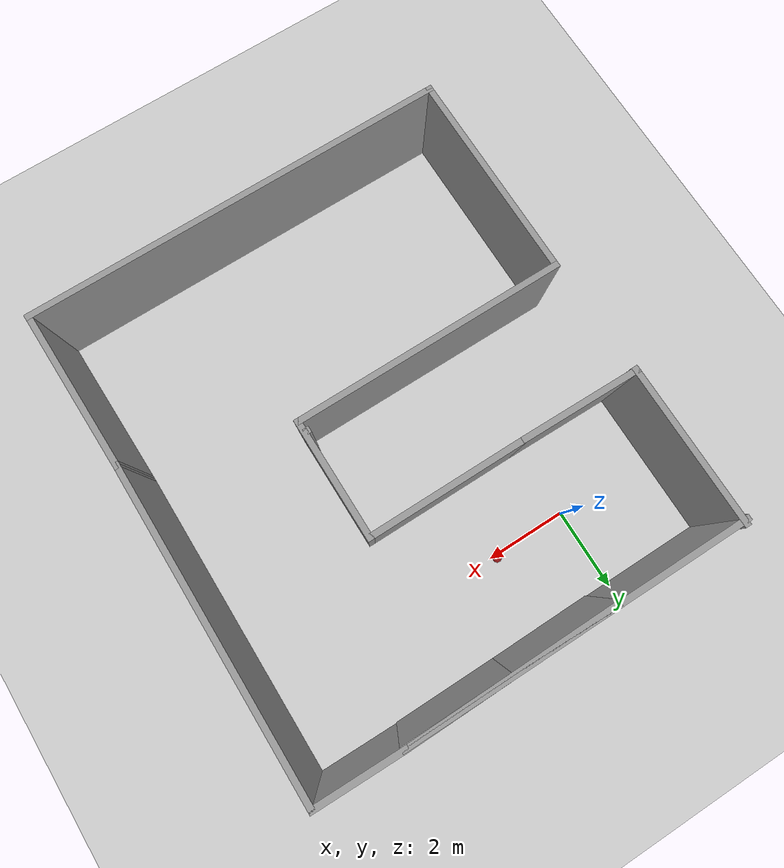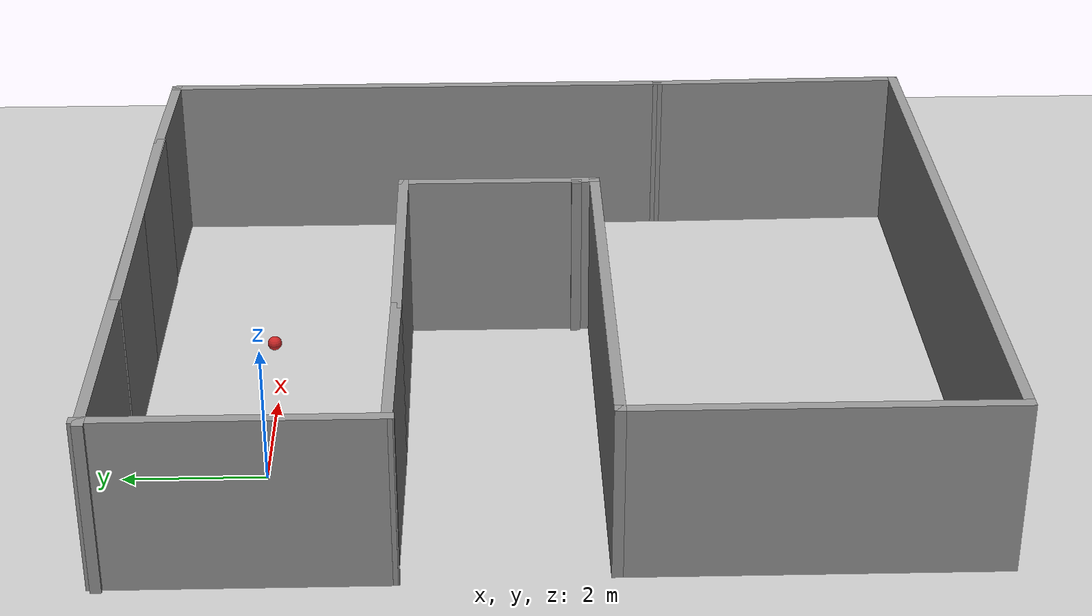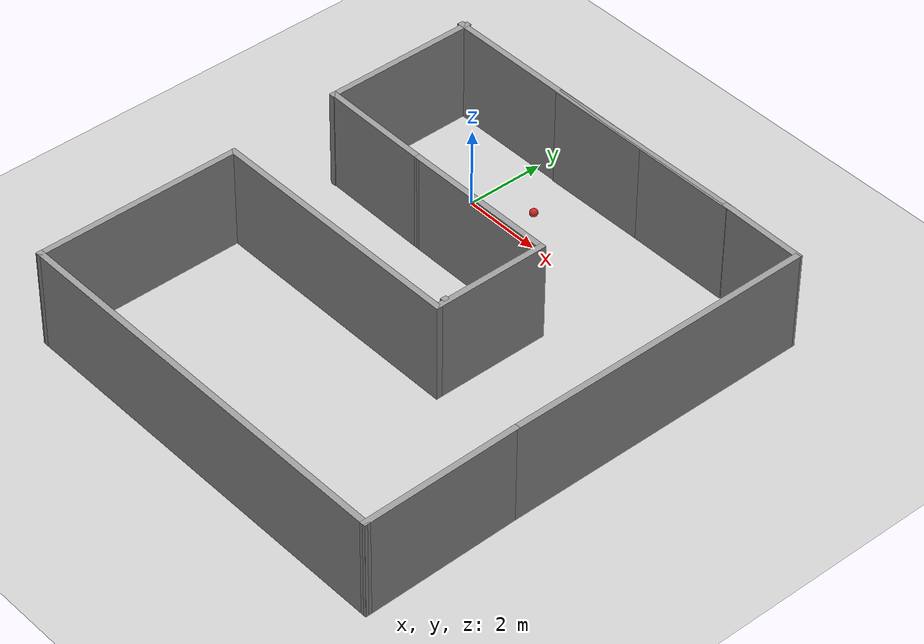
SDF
<sdf version="1.7">
 <world name="default">
  <light name="sun" type="directional">
   <pose>0 0 10 0 -0 0</pose>
   <diffuse>0.8 0.8 0.8 1</diffuse>
   <specular>0.2 0.2 0.2 1</specular>
   <attenuation>
    <range>1000</range>
    <constant>0.9</constant>
    <linear>0.01</linear>
    <quadratic>0.001</quadratic>
   </attenuation>
   <direction>-0.5 0.1 -0.9</direction>
   <spot><inner_angle>0</inner_angle><outer_angle>0</outer_angle><falloff>0</falloff></spot>
  </light>
  <model name="ground_plane">
   <static>1</static>
   <link name="link">
    <collision name="collision">
     <geometry><plane><normal>0 0 1</normal><size>100 100</size></plane></geometry>
     <surface>
      <contact><collide_bitmask>65535</collide_bitmask></contact>
      <friction><ode><mu>100</mu><mu2>50</mu2></ode></friction>
     </surface>
    </collision>
    <visual name="visual">
     <cast_shadows>0</cast_shadows>
     <geometry><plane><normal>0 0 1</normal><size>100 100</size></plane></geometry>
     <material>
      <script><uri>file://media/materials/scripts/gazebo.material</uri><name>Gazebo/Grey</name></script>
     </material>
    </visual>
   </link>
  </model>
  <gravity>0 0 -9.8</gravity>
  <magnetic_field>6e-06 2.3e-05 -4.2e-05</magnetic_field>
  <atmosphere type="adiabatic"/>
  <physics type="ode">
   <max_step_size>0.001</max_step_size>
   <real_time_factor>1</real_time_factor>
   <real_time_update_rate>1000</real_time_update_rate>
  </physics>
  <scene><ambient>0.4 0.4 0.4 1</ambient><background>0.7 0.7 0.7 1</background><shadows>1</shadows></scene>
  <spherical_coordinates>
   <surface_model>EARTH_WGS84</surface_model>
   <latitude_deg>0</latitude_deg>
   <longitude_deg>0</longitude_deg>
   <elevation>0</elevation>
   <heading_deg>0</heading_deg>
  </spherical_coordinates>
  <model name="guided_env.world">
   <pose>2.68048 -3.87251 0 0 -0 0</pose>
   <link name="Wall_0">
    <collision name="Wall_0_Collision">
     <geometry><box><size>4 0.15 2.5</size></box></geometry>
     <pose>0 0 1.25 0 -0 0</pose>
    </collision>
    <visual name="Wall_0_Visual">
     <pose>0 0 1.25 0 -0 0</pose>
     <geometry><box><size>4 0.15 2.5</size></box></geometry>
     <material>
      <script><uri>file://media/materials/scripts/gazebo.material</uri><name>Gazebo/Grey</name></script>
      <ambient>1 1 1 1</ambient>
     </material>
     <meta><layer>0</layer></meta>
    </visual>
    <pose>-0.415668 2.04192 0 0 -0 0</pose>
   </link>
   <link name="Wall_16">
    <collision name="Wall_16_Collision">
     <geometry><box><size>3 0.15 2.5</size></box></geometry>
     <pose>0 0 1.25 0 -0 0</pose>
    </collision>
    <visual name="Wall_16_Visual">
     <pose>0 0 1.25 0 -0 0</pose>
     <geometry><box><size>3 0.15 2.5</size></box></geometry>
     <material>
      <script><uri>file://media/materials/scripts/gazebo.material</uri><name>Gazebo/Grey</name></script>
      <ambient>1 1 1 1</ambient>
     </material>
     <meta><layer>0</layer></meta>
    </visual>
    <pose>-3.76567 2.05941 0 0 -0 3.12932</pose>
   </link>
   <link name="Wall_17">
    <collision name="Wall_17_Collision">
     <geometry><box><size>4 0.15 2.5</size></box></geometry>
     <pose>0 0 1.25 0 -0 0</pose>
    </collision>
    <visual name="Wall_17_Visual">
     <pose>0 0 1.25 0 -0 0</pose>
     <geometry><box><size>4 0.15 2.5</size></box></geometry>
     <material>
      <script><uri>file://media/materials/scripts/gazebo.material</uri><name>Gazebo/Grey</name></script>
      <ambient>1 1 1 1</ambient>
     </material>
     <meta><layer>0</layer></meta>
    </visual>
    <pose>-5.19067 3.98441 0 0 -0 1.5708</pose>
   </link>
   <link name="Wall_2">
    <collision name="Wall_2_Collision">
     <geometry><box><size>0.15 0.15 2.5</size></box></geometry>
     <pose>0 0 1.25 0 -0 0</pose>
    </collision>
    <visual name="Wall_2_Visual">
     <pose>0 0 1.25 0 -0 0</pose>
     <geometry><box><size>0.15 0.15 2.5</size></box></geometry>
     <material>
      <script><uri>file://media/materials/scripts/gazebo.material</uri><name>Gazebo/Grey</name></script>
      <ambient>1 1 1 1</ambient>
     </material>
     <meta><layer>0</layer></meta>
    </visual>
    <pose>1.44933 -0.538077 0 0 -0 0</pose>
   </link>
   <link name="Wall_22">
    <collision name="Wall_22_Collision">
     <geometry><box><size>3 0.15 2.5</size></box></geometry>
     <pose>0 0 1.25 0 -0 0</pose>
    </collision>
    <visual name="Wall_22_Visual">
     <pose>0 0 1.25 0 -0 0</pose>
     <geometry><box><size>3 0.15 2.5</size></box></geometry>
     <material>
      <script><uri>file://media/materials/scripts/gazebo.material</uri><name>Gazebo/Grey</name></script>
      <ambient>1 1 1 1</ambient>
     </material>
     <meta><layer>0</layer></meta>
    </visual>
    <pose>1.50933 0.616923 0 0 -0 -1.5708</pose>
   </link>
   <link name="Wall_24">
    <collision name="Wall_24_Collision">
     <geometry><box><size>2.25 0.15 2.5</size></box></geometry>
     <pose>0 0 1.25 0 -0 0</pose>
    </collision>
    <visual name="Wall_24_Visual">
     <pose>0 0 1.25 0 -0 0</pose>
     <geometry><box><size>2.25 0.15 2.5</size></box></geometry>
     <material>
      <script><uri>file://media/materials/scripts/gazebo.material</uri><name>Gazebo/Grey</name></script>
      <ambient>1 1 1 1</ambient>
     </material>
     <meta><layer>0</layer></meta>
    </visual>
    <pose>4.13933 5.84941 0 0 -0 -0.016656</pose>
   </link>
   <link name="Wall_25">
    <collision name="Wall_25_Collision">
     <geometry><box><size>8 0.15 2.5</size></box></geometry>
     <pose>0 0 1.25 0 -0 0</pose>
    </collision>
    <visual name="Wall_25_Visual">
     <pose>0 0 1.25 0 -0 0</pose>
     <geometry><box><size>8 0.15 2.5</size></box></geometry>
     <material>
      <script><uri>file://media/materials/scripts/gazebo.material</uri><name>Gazebo/Grey</name></script>
      <ambient>1 1 1 1</ambient>
     </material>
     <meta><layer>0</layer></meta>
    </visual>
    <pose>5.18933 1.90692 0 0 -0 -1.5708</pose>
   </link>
   <link name="Wall_27">
    <collision name="Wall_27_Collision">
     <geometry><box><size>6.75 0.15 2.5</size></box></geometry>
     <pose>0 0 1.25 0 -0 0</pose>
    </collision>
    <visual name="Wall_27_Visual">
     <pose>0 0 1.25 0 -0 0</pose>
     <geometry><box><size>6.75 0.15 2.5</size></box></geometry>
     <material>
      <script><uri>file://media/materials/scripts/gazebo.material</uri><name>Gazebo/Grey</name></script>
      <ambient>1 1 1 1</ambient>
     </material>
     <meta><layer>0</layer></meta>
    </visual>
    <pose>-1.79067 -0.808077 0 0 -0 3.14159</pose>
   </link>
   <link name="Wall_28">
    <collision name="Wall_28_Collision">
     <geometry><box><size>5.25 0.15 2.5</size></box></geometry>
     <pose>0 0 1.25 0 -0 0</pose>
    </collision>
    <visual name="Wall_28_Visual">
     <pose>0 0 1.25 0 -0 0</pose>
     <geometry><box><size>5.25 0.15 2.5</size></box></geometry>
     <material>
      <script><uri>file://media/materials/scripts/gazebo.material</uri><name>Gazebo/Grey</name></script>
      <ambient>1 1 1 1</ambient>
     </material>
     <meta><layer>0</layer></meta>
    </visual>
    <pose>-5.09067 -3.35808 0 0 -0 -1.5708</pose>
   </link>
   <link name="Wall_29">
    <collision name="Wall_29_Collision">
     <geometry><box><size>10.5 0.15 2.5</size></box></geometry>
     <pose>0 0 1.25 0 -0 0</pose>
    </collision>
    <visual name="Wall_29_Visual">
     <pose>0 0 1.25 0 -0 0</pose>
     <geometry><box><size>10.5 0.15 2.5</size></box></geometry>
     <material>
      <script><uri>file://media/materials/scripts/gazebo.material</uri><name>Gazebo/Grey</name></script>
      <ambient>1 1 1 1</ambient>
     </material>
     <meta><layer>0</layer></meta>
    </visual>
    <pose>0.084332 -5.90808 0 0 -0 0</pose>
   </link>
   <link name="Wall_30">
    <collision name="Wall_30_Collision">
     <geometry><box><size>4.04063 0.15 2.5</size></box></geometry>
     <pose>0 0 1.25 0 -0 0</pose>
    </collision>
    <visual name="Wall_30_Visual">
     <pose>0 0 1.25 0 -0 0</pose>
     <geometry><box><size>4.04063 0.15 2.5</size></box></geometry>
     <material>
      <script><uri>file://media/materials/scripts/gazebo.material</uri><name>Gazebo/Grey</name></script>
      <ambient>1 1 1 1</ambient>
     </material>
     <meta><layer>0</layer></meta>
    </visual>
    <pose>5.22433 -3.96308 0 0 -0 1.58879</pose>
   </link>
   <link name="Wall_8">
    <collision name="Wall_8_Collision">
     <geometry><box><size>5.25 0.15 2.5</size></box></geometry>
     <pose>0 0 1.25 0 -0 0</pose>
    </collision>
    <visual name="Wall_8_Visual">
     <pose>0 0 1.25 0 -0 0</pose>
     <geometry><box><size>5.25 0.15 2.5</size></box></geometry>
     <material>
      <script><uri>file://media/materials/scripts/gazebo.material</uri><name>Gazebo/Grey</name></script>
      <ambient>1 1 1 1</ambient>
     </material>
     <meta><layer>0</layer></meta>
    </visual>
    <pose>0.539332 5.84941 0 0 -0 0.006859</pose>
   </link>
   <link name="Wall_9">
    <collision name="Wall_9_Collision">
     <geometry><box><size>8.5 0.15 2.5</size></box></geometry>
     <pose>0 0 1.25 0 -0 0</pose>
    </collision>
    <visual name="Wall_9_Visual">
     <pose>0 0 1.25 0 -0 0</pose>
     <geometry><box><size>8.5 0.15 2.5</size></box></geometry>
     <material>
      <script><uri>file://media/materials/scripts/gazebo.material</uri><name>Gazebo/Grey</name></script>
      <ambient>1 1 1 1</ambient>
     </material>
     <meta><layer>0</layer></meta>
    </visual>
    <pose>-1.08567 5.84941 0 0 -0 3.14159</pose>
   </link>
   <static>1</static>
  </model>
  <model name="visual_target">
   <static>1</static>
   <pose>2.0 0.0 1.0 0 0 0</pose>
   <link name="target_link">
    <visual name="target_visual">
     <geometry><sphere><radius>0.1</radius></sphere></geometry>
     <material>
      <script><uri>file://media/materials/scripts/gazebo.material</uri><name>Gazebo/Red</name></script>
     </material>
    </visual>
   </link>
  </model>
 </world>
</sdf>
